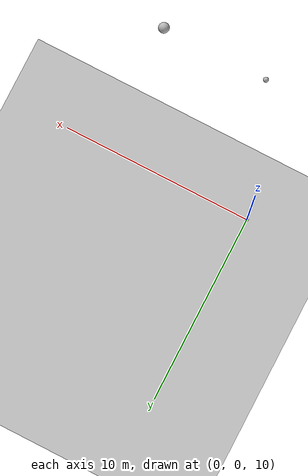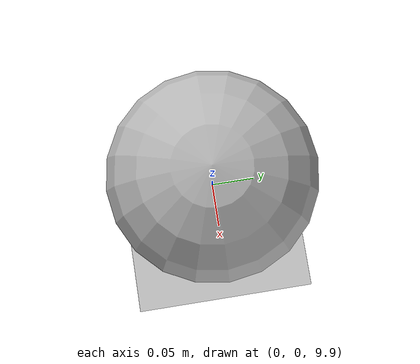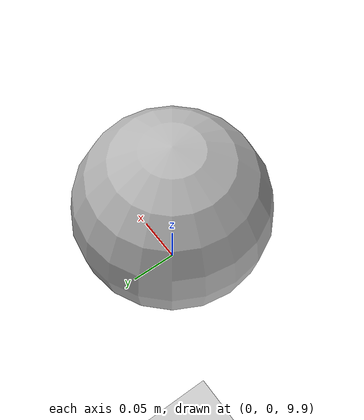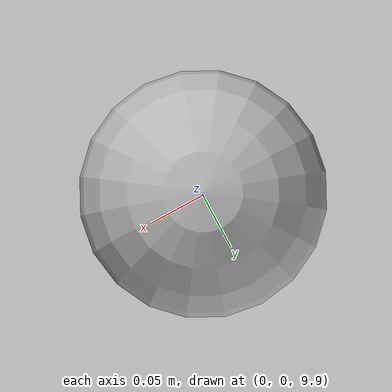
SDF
<?xml version="1.0" ?>
<sdf version="1.5">
  <world name="default">
    <!-- A ground plane -->
    <include>
      <uri>model://ground_plane</uri>
    </include>
    <!-- A global light source -->
    <include>
      <uri>model://sun</uri>
    </include>
    <plugin filename="libTriggerPlugin.so" name="trigger">
      <point>0 0 0</point>
      <radius>5</radius>
    </plugin>
    <model name="sphere">
      <pose>0 0 10.0 0 0 0</pose>
      <link name="link">
        <inertial>
          <mass>1</mass>
        </inertial>
        <collision name="collision">
          <geometry>
            <sphere>
              <radius>0.1</radius>
            </sphere>
          </geometry>
        </collision>
        <visual name="visual">
          <geometry>
            <sphere>
              <radius>0.1</radius>
            </sphere>
          </geometry>
          <material>
            <script>Gazebo/Grey</script>
          </material>
        </visual>
      </link>
    </model>
    <model name="box">
      <pose>1 0 50.0 0 0 0</pose>
      <link name="link">
        <inertial>
          <mass>1</mass>
        </inertial>
        <collision name="collision">
          <geometry>
            <sphere>
              <radius>0.1</radius>
            </sphere>
          </geometry>
        </collision>
        <visual name="visual">
          <geometry>
            <sphere>
              <radius>0.1</radius>
            </sphere>
          </geometry>
          <material>
            <script>Gazebo/Grey</script>
          </material>
        </visual>
      </link>
    </model>
    <model name="cylinder">
      <pose>5 0 50.0 0 0 0</pose>
      <link name="link">
        <inertial>
          <mass>1</mass>
        </inertial>
        <collision name="collision">
          <geometry>
            <sphere>
              <radius>0.2</radius>
            </sphere>
          </geometry>
        </collision>
        <visual name="visual">
          <geometry>
            <sphere>
              <radius>0.2</radius>
            </sphere>
          </geometry>
          <material>
            <script>Gazebo/Grey</script>
          </material>
        </visual>
      </link>
    </model>
  </world>
</sdf>
